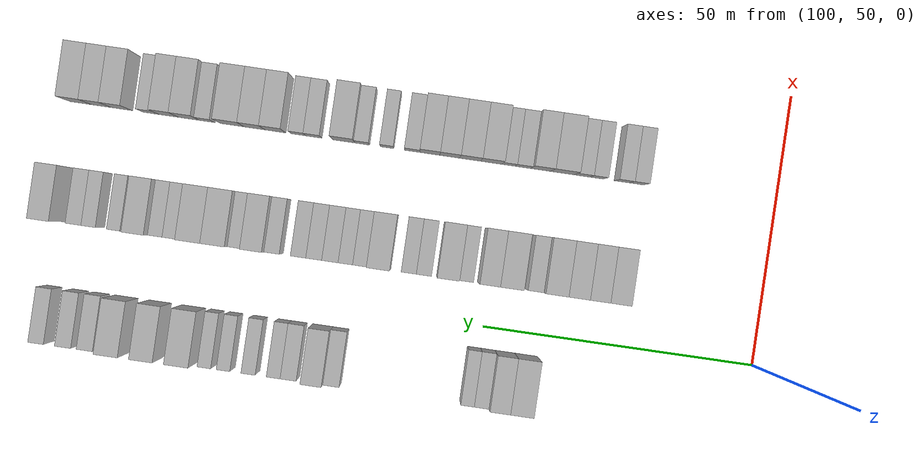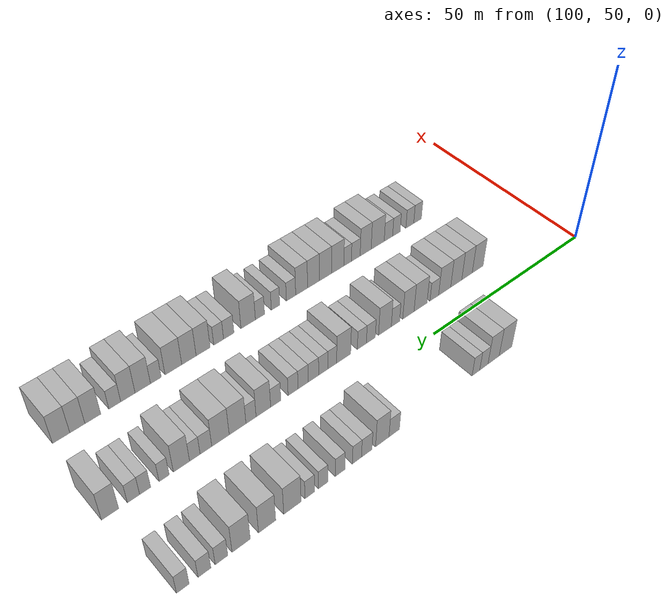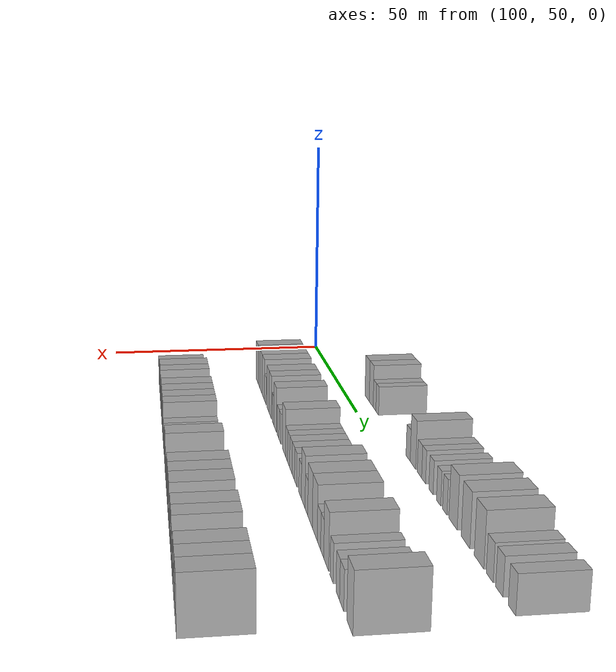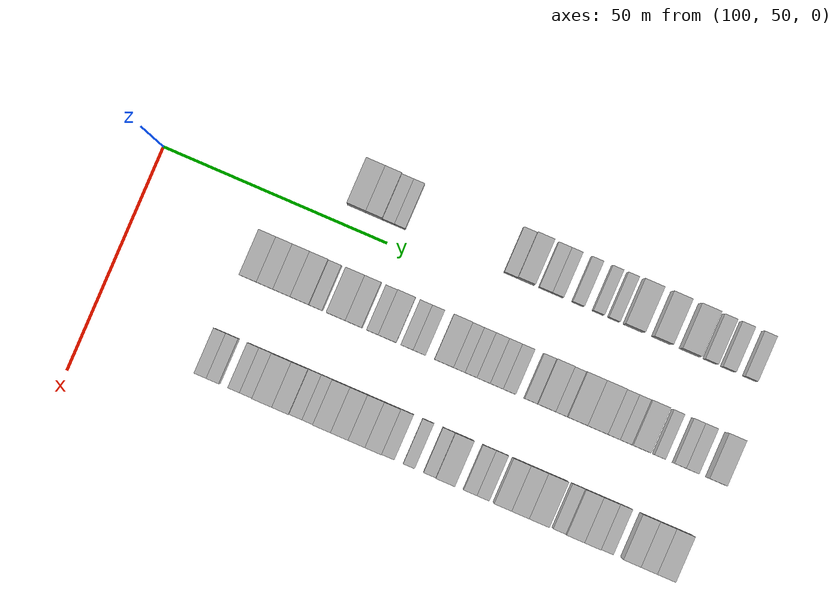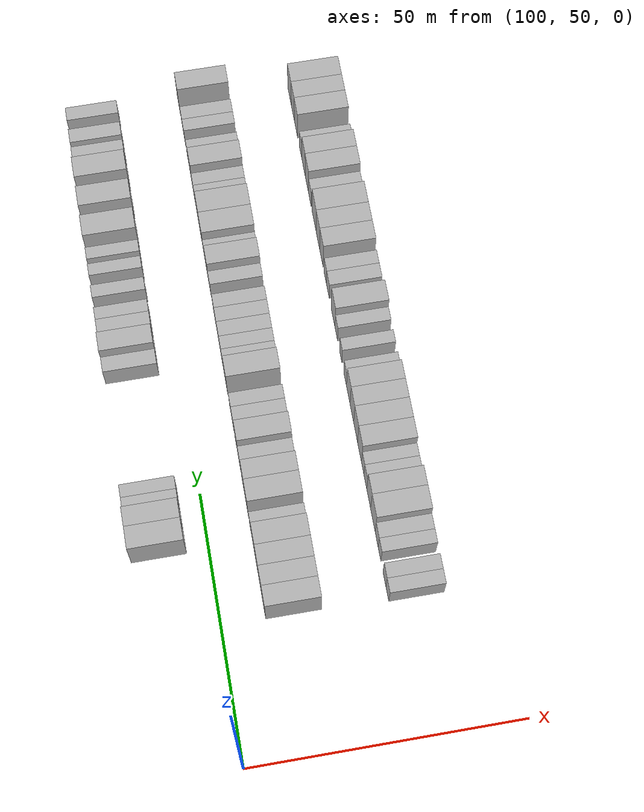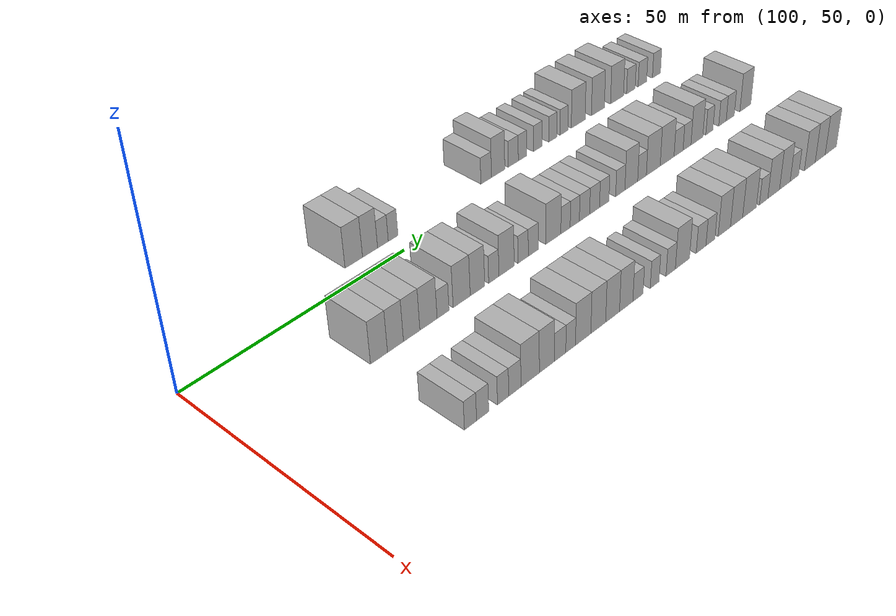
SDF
<sdf version="1.6">
 <world name="default">
  <model name="building_667">
   <static>1</static>
   <pose>91.0000 91.4789 0 0.000000 0.000000 0.000000</pose>
   <link name="link">
    <pose>0 0 4.50 0 0 0</pose>
    <collision name="collision"><geometry><box><size>10.0000 4.1883 9.0000</size></box></geometry></collision>
    <visual name="visual">
     <cast_shadows>0</cast_shadows>
     <geometry><box><size>10.0000 4.1883 9.0000</size></box></geometry>
     <material>
      <script>
       <uri>model://HANNAS_wall/materials/scripts</uri>
       <uri>model://HANNAS_wall/materials/textures</uri>
       <name>vrc/HANNAS_wall</name>
      </script>
     </material>
    </visual>
   </link>
  </model>
  <model name="building_668">
   <static>1</static>
   <pose>91.0000 95.4032 0 0.000000 0.000000 0.000000</pose>
   <link name="link">
    <pose>0 0 4.50 0 0 0</pose>
    <collision name="collision"><geometry><box><size>10.0000 3.6603 9.0000</size></box></geometry></collision>
    <visual name="visual">
     <cast_shadows>0</cast_shadows>
     <geometry><box><size>10.0000 3.6603 9.0000</size></box></geometry>
     <material>
      <script>
       <uri>model://HANNAS_wall/materials/scripts</uri>
       <uri>model://HANNAS_wall/materials/textures</uri>
       <name>vrc/HANNAS_wall</name>
      </script>
     </material>
    </visual>
   </link>
  </model>
  <model name="building_669">
   <static>1</static>
   <pose>91.0000 98.5600 0 0.000000 0.000000 0.000000</pose>
   <link name="link">
    <pose>0 0 3.00 0 0 0</pose>
    <collision name="collision"><geometry><box><size>10.0000 2.6532 6.0000</size></box></geometry></collision>
    <visual name="visual">
     <cast_shadows>0</cast_shadows>
     <geometry><box><size>10.0000 2.6532 6.0000</size></box></geometry>
     <material>
      <script>
       <uri>model://HANNAS_wall/materials/scripts</uri>
       <uri>model://HANNAS_wall/materials/textures</uri>
       <name>vrc/HANNAS_wall</name>
      </script>
     </material>
    </visual>
   </link>
  </model>
  <model name="building_670">
   <static>1</static>
   <pose>91.0000 101.1007 0 0.000000 0.000000 0.000000</pose>
   <link name="link">
    <pose>0 0 3.00 0 0 0</pose>
    <collision name="collision"><geometry><box><size>10.0000 2.4282 6.0000</size></box></geometry></collision>
    <visual name="visual">
     <cast_shadows>0</cast_shadows>
     <geometry><box><size>10.0000 2.4282 6.0000</size></box></geometry>
     <material>
      <script>
       <uri>model://HANNAS_wall/materials/scripts</uri>
       <uri>model://HANNAS_wall/materials/textures</uri>
       <name>vrc/HANNAS_wall</name>
      </script>
     </material>
    </visual>
   </link>
  </model>
  <model name="building_671">
   <static>1</static>
   <pose>91.0000 125.7644 0 0.000000 0.000000 0.000000</pose>
   <link name="link">
    <pose>0 0 3.00 0 0 0</pose>
    <collision name="collision"><geometry><box><size>10.0000 2.9665 6.0000</size></box></geometry></collision>
    <visual name="visual">
     <cast_shadows>0</cast_shadows>
     <geometry><box><size>10.0000 2.9665 6.0000</size></box></geometry>
     <material>
      <script>
       <uri>model://HANNAS_wall/materials/scripts</uri>
       <uri>model://HANNAS_wall/materials/textures</uri>
       <name>vrc/HANNAS_wall</name>
      </script>
     </material>
    </visual>
   </link>
  </model>
  <model name="building_672">
   <static>1</static>
   <pose>91.0000 129.1376 0 0.000000 0.000000 0.000000</pose>
   <link name="link">
    <pose>0 0 4.50 0 0 0</pose>
    <collision name="collision"><geometry><box><size>10.0000 3.7799 9.0000</size></box></geometry></collision>
    <visual name="visual">
     <cast_shadows>0</cast_shadows>
     <geometry><box><size>10.0000 3.7799 9.0000</size></box></geometry>
     <material>
      <script>
       <uri>model://HANNAS_wall/materials/scripts</uri>
       <uri>model://HANNAS_wall/materials/textures</uri>
       <name>vrc/HANNAS_wall</name>
      </script>
     </material>
    </visual>
   </link>
  </model>
  <model name="building_673">
   <static>1</static>
   <pose>91.0000 133.4823 0 0.000000 0.000000 0.000000</pose>
   <link name="link">
    <pose>0 0 3.00 0 0 0</pose>
    <collision name="collision"><geometry><box><size>10.0000 2.9095 6.0000</size></box></geometry></collision>
    <visual name="visual">
     <cast_shadows>0</cast_shadows>
     <geometry><box><size>10.0000 2.9095 6.0000</size></box></geometry>
     <material>
      <script>
       <uri>model://HANNAS_wall/materials/scripts</uri>
       <uri>model://HANNAS_wall/materials/textures</uri>
       <name>vrc/HANNAS_wall</name>
      </script>
     </material>
    </visual>
   </link>
  </model>
  <model name="building_674">
   <static>1</static>
   <pose>91.0000 136.1793 0 0.000000 0.000000 0.000000</pose>
   <link name="link">
    <pose>0 0 3.00 0 0 0</pose>
    <collision name="collision"><geometry><box><size>10.0000 2.4844 6.0000</size></box></geometry></collision>
    <visual name="visual">
     <cast_shadows>0</cast_shadows>
     <geometry><box><size>10.0000 2.4844 6.0000</size></box></geometry>
     <material>
      <script>
       <uri>model://HANNAS_wall/materials/scripts</uri>
       <uri>model://HANNAS_wall/materials/textures</uri>
       <name>vrc/HANNAS_wall</name>
      </script>
     </material>
    </visual>
   </link>
  </model>
  <model name="building_675">
   <static>1</static>
   <pose>91.0000 140.7113 0 0.000000 0.000000 0.000000</pose>
   <link name="link">
    <pose>0 0 3.00 0 0 0</pose>
    <collision name="collision"><geometry><box><size>10.0000 2.5796 6.0000</size></box></geometry></collision>
    <visual name="visual">
     <cast_shadows>0</cast_shadows>
     <geometry><box><size>10.0000 2.5796 6.0000</size></box></geometry>
     <material>
      <script>
       <uri>model://HANNAS_wall/materials/scripts</uri>
       <uri>model://HANNAS_wall/materials/textures</uri>
       <name>vrc/HANNAS_wall</name>
      </script>
     </material>
    </visual>
   </link>
  </model>
  <model name="building_676">
   <static>1</static>
   <pose>91.0000 145.2244 0 0.000000 0.000000 0.000000</pose>
   <link name="link">
    <pose>0 0 3.00 0 0 0</pose>
    <collision name="collision"><geometry><box><size>10.0000 2.4467 6.0000</size></box></geometry></collision>
    <visual name="visual">
     <cast_shadows>0</cast_shadows>
     <geometry><box><size>10.0000 2.4467 6.0000</size></box></geometry>
     <material>
      <script>
       <uri>model://HANNAS_wall/materials/scripts</uri>
       <uri>model://HANNAS_wall/materials/textures</uri>
       <name>vrc/HANNAS_wall</name>
      </script>
     </material>
    </visual>
   </link>
  </model>
  <model name="building_677">
   <static>1</static>
   <pose>91.0000 148.6814 0 0.000000 0.000000 0.000000</pose>
   <link name="link">
    <pose>0 0 3.00 0 0 0</pose>
    <collision name="collision"><geometry><box><size>10.0000 2.4671 6.0000</size></box></geometry></collision>
    <visual name="visual">
     <cast_shadows>0</cast_shadows>
     <geometry><box><size>10.0000 2.4671 6.0000</size></box></geometry>
     <material>
      <script>
       <uri>model://HANNAS_wall/materials/scripts</uri>
       <uri>model://HANNAS_wall/materials/textures</uri>
       <name>vrc/HANNAS_wall</name>
      </script>
     </material>
    </visual>
   </link>
  </model>
  <model name="building_678">
   <static>1</static>
   <pose>91.0000 153.0961 0 0.000000 0.000000 0.000000</pose>
   <link name="link">
    <pose>0 0 4.50 0 0 0</pose>
    <collision name="collision"><geometry><box><size>10.0000 4.3623 9.0000</size></box></geometry></collision>
    <visual name="visual">
     <cast_shadows>0</cast_shadows>
     <geometry><box><size>10.0000 4.3623 9.0000</size></box></geometry>
     <material>
      <script>
       <uri>model://HANNAS_wall/materials/scripts</uri>
       <uri>model://HANNAS_wall/materials/textures</uri>
       <name>vrc/HANNAS_wall</name>
      </script>
     </material>
    </visual>
   </link>
  </model>
  <model name="building_679">
   <static>1</static>
   <pose>91.0000 159.3726 0 0.000000 0.000000 0.000000</pose>
   <link name="link">
    <pose>0 0 4.50 0 0 0</pose>
    <collision name="collision"><geometry><box><size>10.0000 4.1907 9.0000</size></box></geometry></collision>
    <visual name="visual">
     <cast_shadows>0</cast_shadows>
     <geometry><box><size>10.0000 4.1907 9.0000</size></box></geometry>
     <material>
      <script>
       <uri>model://HANNAS_wall/materials/scripts</uri>
       <uri>model://HANNAS_wall/materials/textures</uri>
       <name>vrc/HANNAS_wall</name>
      </script>
     </material>
    </visual>
   </link>
  </model>
  <model name="building_680">
   <static>1</static>
   <pose>91.0000 165.6266 0 0.000000 0.000000 0.000000</pose>
   <link name="link">
    <pose>0 0 4.50 0 0 0</pose>
    <collision name="collision"><geometry><box><size>10.0000 4.3174 9.0000</size></box></geometry></collision>
    <visual name="visual">
     <cast_shadows>0</cast_shadows>
     <geometry><box><size>10.0000 4.3174 9.0000</size></box></geometry>
     <material>
      <script>
       <uri>model://HANNAS_wall/materials/scripts</uri>
       <uri>model://HANNAS_wall/materials/textures</uri>
       <name>vrc/HANNAS_wall</name>
      </script>
     </material>
    </visual>
   </link>
  </model>
  <model name="building_681">
   <static>1</static>
   <pose>91.0000 170.2442 0 0.000000 0.000000 0.000000</pose>
   <link name="link">
    <pose>0 0 3.00 0 0 0</pose>
    <collision name="collision"><geometry><box><size>10.0000 2.9179 6.0000</size></box></geometry></collision>
    <visual name="visual">
     <cast_shadows>0</cast_shadows>
     <geometry><box><size>10.0000 2.9179 6.0000</size></box></geometry>
     <material>
      <script>
       <uri>model://HANNAS_wall/materials/scripts</uri>
       <uri>model://HANNAS_wall/materials/textures</uri>
       <name>vrc/HANNAS_wall</name>
      </script>
     </material>
    </visual>
   </link>
  </model>
  <model name="building_682">
   <static>1</static>
   <pose>91.0000 174.1643 0 0.000000 0.000000 0.000000</pose>
   <link name="link">
    <pose>0 0 3.00 0 0 0</pose>
    <collision name="collision"><geometry><box><size>10.0000 2.9223 6.0000</size></box></geometry></collision>
    <visual name="visual">
     <cast_shadows>0</cast_shadows>
     <geometry><box><size>10.0000 2.9223 6.0000</size></box></geometry>
     <material>
      <script>
       <uri>model://HANNAS_wall/materials/scripts</uri>
       <uri>model://HANNAS_wall/materials/textures</uri>
       <name>vrc/HANNAS_wall</name>
      </script>
     </material>
    </visual>
   </link>
  </model>
  <model name="building_683">
   <static>1</static>
   <pose>91.0000 179.0335 0 0.000000 0.000000 0.000000</pose>
   <link name="link">
    <pose>0 0 3.00 0 0 0</pose>
    <collision name="collision"><geometry><box><size>10.0000 2.8161 6.0000</size></box></geometry></collision>
    <visual name="visual">
     <cast_shadows>0</cast_shadows>
     <geometry><box><size>10.0000 2.8161 6.0000</size></box></geometry>
     <material>
      <script>
       <uri>model://HANNAS_wall/materials/scripts</uri>
       <uri>model://HANNAS_wall/materials/textures</uri>
       <name>vrc/HANNAS_wall</name>
      </script>
     </material>
    </visual>
   </link>
  </model>
  <model name="building_854">
   <static>1</static>
   <pose>113.0000 77.0776 0 0.000000 0.000000 0.000000</pose>
   <link name="link">
    <pose>0 0 4.50 0 0 0</pose>
    <collision name="collision"><geometry><box><size>10.0000 3.8097 9.0000</size></box></geometry></collision>
    <visual name="visual">
     <cast_shadows>0</cast_shadows>
     <geometry><box><size>10.0000 3.8097 9.0000</size></box></geometry>
     <material>
      <script>
       <uri>model://HANNAS_wall/materials/scripts</uri>
       <uri>model://HANNAS_wall/materials/textures</uri>
       <name>vrc/HANNAS_wall</name>
      </script>
     </material>
    </visual>
   </link>
  </model>
  <model name="building_855">
   <static>1</static>
   <pose>113.0000 80.7971 0 0.000000 0.000000 0.000000</pose>
   <link name="link">
    <pose>0 0 4.50 0 0 0</pose>
    <collision name="collision"><geometry><box><size>10.0000 3.6294 9.0000</size></box></geometry></collision>
    <visual name="visual">
     <cast_shadows>0</cast_shadows>
     <geometry><box><size>10.0000 3.6294 9.0000</size></box></geometry>
     <material>
      <script>
       <uri>model://HANNAS_wall/materials/scripts</uri>
       <uri>model://HANNAS_wall/materials/textures</uri>
       <name>vrc/HANNAS_wall</name>
      </script>
     </material>
    </visual>
   </link>
  </model>
  <model name="building_856">
   <static>1</static>
   <pose>113.0000 84.5155 0 0.000000 0.000000 0.000000</pose>
   <link name="link">
    <pose>0 0 4.50 0 0 0</pose>
    <collision name="collision"><geometry><box><size>10.0000 3.8074 9.0000</size></box></geometry></collision>
    <visual name="visual">
     <cast_shadows>0</cast_shadows>
     <geometry><box><size>10.0000 3.8074 9.0000</size></box></geometry>
     <material>
      <script>
       <uri>model://HANNAS_wall/materials/scripts</uri>
       <uri>model://HANNAS_wall/materials/textures</uri>
       <name>vrc/HANNAS_wall</name>
      </script>
     </material>
    </visual>
   </link>
  </model>
  <model name="building_857">
   <static>1</static>
   <pose>113.0000 88.4548 0 0.000000 0.000000 0.000000</pose>
   <link name="link">
    <pose>0 0 4.50 0 0 0</pose>
    <collision name="collision"><geometry><box><size>10.0000 4.0712 9.0000</size></box></geometry></collision>
    <visual name="visual">
     <cast_shadows>0</cast_shadows>
     <geometry><box><size>10.0000 4.0712 9.0000</size></box></geometry>
     <material>
      <script>
       <uri>model://HANNAS_wall/materials/scripts</uri>
       <uri>model://HANNAS_wall/materials/textures</uri>
       <name>vrc/HANNAS_wall</name>
      </script>
     </material>
    </visual>
   </link>
  </model>
  <model name="building_858">
   <static>1</static>
   <pose>113.0000 91.9271 0 0.000000 0.000000 0.000000</pose>
   <link name="link">
    <pose>0 0 3.00 0 0 0</pose>
    <collision name="collision"><geometry><box><size>10.0000 2.8732 6.0000</size></box></geometry></collision>
    <visual name="visual">
     <cast_shadows>0</cast_shadows>
     <geometry><box><size>10.0000 2.8732 6.0000</size></box></geometry>
     <material>
      <script>
       <uri>model://HANNAS_wall/materials/scripts</uri>
       <uri>model://HANNAS_wall/materials/textures</uri>
       <name>vrc/HANNAS_wall</name>
      </script>
     </material>
    </visual>
   </link>
  </model>
  <model name="building_859">
   <static>1</static>
   <pose>113.0000 96.4698 0 0.000000 0.000000 0.000000</pose>
   <link name="link">
    <pose>0 0 4.50 0 0 0</pose>
    <collision name="collision"><geometry><box><size>10.0000 4.2123 9.0000</size></box></geometry></collision>
    <visual name="visual">
     <cast_shadows>0</cast_shadows>
     <geometry><box><size>10.0000 4.2123 9.0000</size></box></geometry>
     <material>
      <script>
       <uri>model://HANNAS_wall/materials/scripts</uri>
       <uri>model://HANNAS_wall/materials/textures</uri>
       <name>vrc/HANNAS_wall</name>
      </script>
     </material>
    </visual>
   </link>
  </model>
  <model name="building_860">
   <static>1</static>
   <pose>113.0000 100.3964 0 0.000000 0.000000 0.000000</pose>
   <link name="link">
    <pose>0 0 4.50 0 0 0</pose>
    <collision name="collision"><geometry><box><size>10.0000 3.6409 9.0000</size></box></geometry></collision>
    <visual name="visual">
     <cast_shadows>0</cast_shadows>
     <geometry><box><size>10.0000 3.6409 9.0000</size></box></geometry>
     <material>
      <script>
       <uri>model://HANNAS_wall/materials/scripts</uri>
       <uri>model://HANNAS_wall/materials/textures</uri>
       <name>vrc/HANNAS_wall</name>
      </script>
     </material>
    </visual>
   </link>
  </model>
  <model name="building_861">
   <static>1</static>
   <pose>113.0000 104.5297 0 0.000000 0.000000 0.000000</pose>
   <link name="link">
    <pose>0 0 3.00 0 0 0</pose>
    <collision name="collision"><geometry><box><size>10.0000 2.6257 6.0000</size></box></geometry></collision>
    <visual name="visual">
     <cast_shadows>0</cast_shadows>
     <geometry><box><size>10.0000 2.6257 6.0000</size></box></geometry>
     <material>
      <script>
       <uri>model://HANNAS_wall/materials/scripts</uri>
       <uri>model://HANNAS_wall/materials/textures</uri>
       <name>vrc/HANNAS_wall</name>
      </script>
     </material>
    </visual>
   </link>
  </model>
  <model name="building_862">
   <static>1</static>
   <pose>113.0000 107.8255 0 0.000000 0.000000 0.000000</pose>
   <link name="link">
    <pose>0 0 4.50 0 0 0</pose>
    <collision name="collision"><geometry><box><size>10.0000 3.9659 9.0000</size></box></geometry></collision>
    <visual name="visual">
     <cast_shadows>0</cast_shadows>
     <geometry><box><size>10.0000 3.9659 9.0000</size></box></geometry>
     <material>
      <script>
       <uri>model://HANNAS_wall/materials/scripts</uri>
       <uri>model://HANNAS_wall/materials/textures</uri>
       <name>vrc/HANNAS_wall</name>
      </script>
     </material>
    </visual>
   </link>
  </model>
  <model name="building_863">
   <static>1</static>
   <pose>113.0000 112.1782 0 0.000000 0.000000 0.000000</pose>
   <link name="link">
    <pose>0 0 3.00 0 0 0</pose>
    <collision name="collision"><geometry><box><size>10.0000 2.7395 6.0000</size></box></geometry></collision>
    <visual name="visual">
     <cast_shadows>0</cast_shadows>
     <geometry><box><size>10.0000 2.7395 6.0000</size></box></geometry>
     <material>
      <script>
       <uri>model://HANNAS_wall/materials/scripts</uri>
       <uri>model://HANNAS_wall/materials/textures</uri>
       <name>vrc/HANNAS_wall</name>
      </script>
     </material>
    </visual>
   </link>
  </model>
  <model name="building_864">
   <static>1</static>
   <pose>113.0000 114.9187 0 0.000000 0.000000 0.000000</pose>
   <link name="link">
    <pose>0 0 3.00 0 0 0</pose>
    <collision name="collision"><geometry><box><size>10.0000 2.7417 6.0000</size></box></geometry></collision>
    <visual name="visual">
     <cast_shadows>0</cast_shadows>
     <geometry><box><size>10.0000 2.7417 6.0000</size></box></geometry>
     <material>
      <script>
       <uri>model://HANNAS_wall/materials/scripts</uri>
       <uri>model://HANNAS_wall/materials/textures</uri>
       <name>vrc/HANNAS_wall</name>
      </script>
     </material>
    </visual>
   </link>
  </model>
  <model name="building_865">
   <static>1</static>
   <pose>113.0000 120.3689 0 0.000000 0.000000 0.000000</pose>
   <link name="link">
    <pose>0 0 4.50 0 0 0</pose>
    <collision name="collision"><geometry><box><size>10.0000 4.1587 9.0000</size></box></geometry></collision>
    <visual name="visual">
     <cast_shadows>0</cast_shadows>
     <geometry><box><size>10.0000 4.1587 9.0000</size></box></geometry>
     <material>
      <script>
       <uri>model://HANNAS_wall/materials/scripts</uri>
       <uri>model://HANNAS_wall/materials/textures</uri>
       <name>vrc/HANNAS_wall</name>
      </script>
     </material>
    </visual>
   </link>
  </model>
  <model name="building_866">
   <static>1</static>
   <pose>113.0000 123.7522 0 0.000000 0.000000 0.000000</pose>
   <link name="link">
    <pose>0 0 3.00 0 0 0</pose>
    <collision name="collision"><geometry><box><size>10.0000 2.6078 6.0000</size></box></geometry></collision>
    <visual name="visual">
     <cast_shadows>0</cast_shadows>
     <geometry><box><size>10.0000 2.6078 6.0000</size></box></geometry>
     <material>
      <script>
       <uri>model://HANNAS_wall/materials/scripts</uri>
       <uri>model://HANNAS_wall/materials/textures</uri>
       <name>vrc/HANNAS_wall</name>
      </script>
     </material>
    </visual>
   </link>
  </model>
  <model name="building_867">
   <static>1</static>
   <pose>113.0000 126.3635 0 0.000000 0.000000 0.000000</pose>
   <link name="link">
    <pose>0 0 3.00 0 0 0</pose>
    <collision name="collision"><geometry><box><size>10.0000 2.6148 6.0000</size></box></geometry></collision>
    <visual name="visual">
     <cast_shadows>0</cast_shadows>
     <geometry><box><size>10.0000 2.6148 6.0000</size></box></geometry>
     <material>
      <script>
       <uri>model://HANNAS_wall/materials/scripts</uri>
       <uri>model://HANNAS_wall/materials/textures</uri>
       <name>vrc/HANNAS_wall</name>
      </script>
     </material>
    </visual>
   </link>
  </model>
  <model name="building_868">
   <static>1</static>
   <pose>113.0000 129.1506 0 0.000000 0.000000 0.000000</pose>
   <link name="link">
    <pose>0 0 3.00 0 0 0</pose>
    <collision name="collision"><geometry><box><size>10.0000 2.9593 6.0000</size></box></geometry></collision>
    <visual name="visual">
     <cast_shadows>0</cast_shadows>
     <geometry><box><size>10.0000 2.9593 6.0000</size></box></geometry>
     <material>
      <script>
       <uri>model://HANNAS_wall/materials/scripts</uri>
       <uri>model://HANNAS_wall/materials/textures</uri>
       <name>vrc/HANNAS_wall</name>
      </script>
     </material>
    </visual>
   </link>
  </model>
  <model name="building_869">
   <static>1</static>
   <pose>113.0000 132.0668 0 0.000000 0.000000 0.000000</pose>
   <link name="link">
    <pose>0 0 3.00 0 0 0</pose>
    <collision name="collision"><geometry><box><size>10.0000 2.8731 6.0000</size></box></geometry></collision>
    <visual name="visual">
     <cast_shadows>0</cast_shadows>
     <geometry><box><size>10.0000 2.8731 6.0000</size></box></geometry>
     <material>
      <script>
       <uri>model://HANNAS_wall/materials/scripts</uri>
       <uri>model://HANNAS_wall/materials/textures</uri>
       <name>vrc/HANNAS_wall</name>
      </script>
     </material>
    </visual>
   </link>
  </model>
  <model name="building_870">
   <static>1</static>
   <pose>113.0000 134.8924 0 0.000000 0.000000 0.000000</pose>
   <link name="link">
    <pose>0 0 3.00 0 0 0</pose>
    <collision name="collision"><geometry><box><size>10.0000 2.7780 6.0000</size></box></geometry></collision>
    <visual name="visual">
     <cast_shadows>0</cast_shadows>
     <geometry><box><size>10.0000 2.7780 6.0000</size></box></geometry>
     <material>
      <script>
       <uri>model://HANNAS_wall/materials/scripts</uri>
       <uri>model://HANNAS_wall/materials/textures</uri>
       <name>vrc/HANNAS_wall</name>
      </script>
     </material>
    </visual>
   </link>
  </model>
  <model name="building_871">
   <static>1</static>
   <pose>113.0000 139.6704 0 0.000000 0.000000 0.000000</pose>
   <link name="link">
    <pose>0 0 3.00 0 0 0</pose>
    <collision name="collision"><geometry><box><size>10.0000 2.7781 6.0000</size></box></geometry></collision>
    <visual name="visual">
     <cast_shadows>0</cast_shadows>
     <geometry><box><size>10.0000 2.7781 6.0000</size></box></geometry>
     <material>
      <script>
       <uri>model://HANNAS_wall/materials/scripts</uri>
       <uri>model://HANNAS_wall/materials/textures</uri>
       <name>vrc/HANNAS_wall</name>
      </script>
     </material>
    </visual>
   </link>
  </model>
  <model name="building_872">
   <static>1</static>
   <pose>113.0000 143.0177 0 0.000000 0.000000 0.000000</pose>
   <link name="link">
    <pose>0 0 4.50 0 0 0</pose>
    <collision name="collision"><geometry><box><size>10.0000 3.9165 9.0000</size></box></geometry></collision>
    <visual name="visual">
     <cast_shadows>0</cast_shadows>
     <geometry><box><size>10.0000 3.9165 9.0000</size></box></geometry>
     <material>
      <script>
       <uri>model://HANNAS_wall/materials/scripts</uri>
       <uri>model://HANNAS_wall/materials/textures</uri>
       <name>vrc/HANNAS_wall</name>
      </script>
     </material>
    </visual>
   </link>
  </model>
  <model name="building_873">
   <static>1</static>
   <pose>113.0000 146.3214 0 0.000000 0.000000 0.000000</pose>
   <link name="link">
    <pose>0 0 3.00 0 0 0</pose>
    <collision name="collision"><geometry><box><size>10.0000 2.6908 6.0000</size></box></geometry></collision>
    <visual name="visual">
     <cast_shadows>0</cast_shadows>
     <geometry><box><size>10.0000 2.6908 6.0000</size></box></geometry>
     <material>
      <script>
       <uri>model://HANNAS_wall/materials/scripts</uri>
       <uri>model://HANNAS_wall/materials/textures</uri>
       <name>vrc/HANNAS_wall</name>
      </script>
     </material>
    </visual>
   </link>
  </model>
  <model name="building_874">
   <static>1</static>
   <pose>113.0000 149.8511 0 0.000000 0.000000 0.000000</pose>
   <link name="link">
    <pose>0 0 4.50 0 0 0</pose>
    <collision name="collision"><geometry><box><size>10.0000 4.3688 9.0000</size></box></geometry></collision>
    <visual name="visual">
     <cast_shadows>0</cast_shadows>
     <geometry><box><size>10.0000 4.3688 9.0000</size></box></geometry>
     <material>
      <script>
       <uri>model://HANNAS_wall/materials/scripts</uri>
       <uri>model://HANNAS_wall/materials/textures</uri>
       <name>vrc/HANNAS_wall</name>
      </script>
     </material>
    </visual>
   </link>
  </model>
  <model name="building_875">
   <static>1</static>
   <pose>113.0000 154.2616 0 0.000000 0.000000 0.000000</pose>
   <link name="link">
    <pose>0 0 4.50 0 0 0</pose>
    <collision name="collision"><geometry><box><size>10.0000 4.4522 9.0000</size></box></geometry></collision>
    <visual name="visual">
     <cast_shadows>0</cast_shadows>
     <geometry><box><size>10.0000 4.4522 9.0000</size></box></geometry>
     <material>
      <script>
       <uri>model://HANNAS_wall/materials/scripts</uri>
       <uri>model://HANNAS_wall/materials/textures</uri>
       <name>vrc/HANNAS_wall</name>
      </script>
     </material>
    </visual>
   </link>
  </model>
  <model name="building_876">
   <static>1</static>
   <pose>113.0000 157.9608 0 0.000000 0.000000 0.000000</pose>
   <link name="link">
    <pose>0 0 3.00 0 0 0</pose>
    <collision name="collision"><geometry><box><size>10.0000 2.9462 6.0000</size></box></geometry></collision>
    <visual name="visual">
     <cast_shadows>0</cast_shadows>
     <geometry><box><size>10.0000 2.9462 6.0000</size></box></geometry>
     <material>
      <script>
       <uri>model://HANNAS_wall/materials/scripts</uri>
       <uri>model://HANNAS_wall/materials/textures</uri>
       <name>vrc/HANNAS_wall</name>
      </script>
     </material>
    </visual>
   </link>
  </model>
  <model name="building_877">
   <static>1</static>
   <pose>113.0000 160.7417 0 0.000000 0.000000 0.000000</pose>
   <link name="link">
    <pose>0 0 3.00 0 0 0</pose>
    <collision name="collision"><geometry><box><size>10.0000 2.6155 6.0000</size></box></geometry></collision>
    <visual name="visual">
     <cast_shadows>0</cast_shadows>
     <geometry><box><size>10.0000 2.6155 6.0000</size></box></geometry>
     <material>
      <script>
       <uri>model://HANNAS_wall/materials/scripts</uri>
       <uri>model://HANNAS_wall/materials/textures</uri>
       <name>vrc/HANNAS_wall</name>
      </script>
     </material>
    </visual>
   </link>
  </model>
  <model name="building_878">
   <static>1</static>
   <pose>113.0000 164.0387 0 0.000000 0.000000 0.000000</pose>
   <link name="link">
    <pose>0 0 4.50 0 0 0</pose>
    <collision name="collision"><geometry><box><size>10.0000 3.9785 9.0000</size></box></geometry></collision>
    <visual name="visual">
     <cast_shadows>0</cast_shadows>
     <geometry><box><size>10.0000 3.9785 9.0000</size></box></geometry>
     <material>
      <script>
       <uri>model://HANNAS_wall/materials/scripts</uri>
       <uri>model://HANNAS_wall/materials/textures</uri>
       <name>vrc/HANNAS_wall</name>
      </script>
     </material>
    </visual>
   </link>
  </model>
  <model name="building_879">
   <static>1</static>
   <pose>113.0000 168.2429 0 0.000000 0.000000 0.000000</pose>
   <link name="link">
    <pose>0 0 3.00 0 0 0</pose>
    <collision name="collision"><geometry><box><size>10.0000 2.4299 6.0000</size></box></geometry></collision>
    <visual name="visual">
     <cast_shadows>0</cast_shadows>
     <geometry><box><size>10.0000 2.4299 6.0000</size></box></geometry>
     <material>
      <script>
       <uri>model://HANNAS_wall/materials/scripts</uri>
       <uri>model://HANNAS_wall/materials/textures</uri>
       <name>vrc/HANNAS_wall</name>
      </script>
     </material>
    </visual>
   </link>
  </model>
  <model name="building_880">
   <static>1</static>
   <pose>113.0000 172.7592 0 0.000000 0.000000 0.000000</pose>
   <link name="link">
    <pose>0 0 3.00 0 0 0</pose>
    <collision name="collision"><geometry><box><size>10.0000 2.6026 6.0000</size></box></geometry></collision>
    <visual name="visual">
     <cast_shadows>0</cast_shadows>
     <geometry><box><size>10.0000 2.6026 6.0000</size></box></geometry>
     <material>
      <script>
       <uri>model://HANNAS_wall/materials/scripts</uri>
       <uri>model://HANNAS_wall/materials/textures</uri>
       <name>vrc/HANNAS_wall</name>
      </script>
     </material>
    </visual>
   </link>
  </model>
  <model name="building_881">
   <static>1</static>
   <pose>113.0000 175.4812 0 0.000000 0.000000 0.000000</pose>
   <link name="link">
    <pose>0 0 3.00 0 0 0</pose>
    <collision name="collision"><geometry><box><size>10.0000 2.8413 6.0000</size></box></geometry></collision>
    <visual name="visual">
     <cast_shadows>0</cast_shadows>
     <geometry><box><size>10.0000 2.8413 6.0000</size></box></geometry>
     <material>
      <script>
       <uri>model://HANNAS_wall/materials/scripts</uri>
       <uri>model://HANNAS_wall/materials/textures</uri>
       <name>vrc/HANNAS_wall</name>
      </script>
     </material>
    </visual>
   </link>
  </model>
  <model name="building_882">
   <static>1</static>
   <pose>113.0000 180.8557 0 0.000000 0.000000 0.000000</pose>
   <link name="link">
    <pose>0 0 4.50 0 0 0</pose>
    <collision name="collision"><geometry><box><size>10.0000 3.9076 9.0000</size></box></geometry></collision>
    <visual name="visual">
     <cast_shadows>0</cast_shadows>
     <geometry><box><size>10.0000 3.9076 9.0000</size></box></geometry>
     <material>
      <script>
       <uri>model://HANNAS_wall/materials/scripts</uri>
       <uri>model://HANNAS_wall/materials/textures</uri>
       <name>vrc/HANNAS_wall</name>
      </script>
     </material>
    </visual>
   </link>
  </model>
  <model name="building_1041">
   <static>1</static>
   <pose>135.0000 75.8888 0 0.000000 0.000000 0.000000</pose>
   <link name="link">
    <pose>0 0 3.00 0 0 0</pose>
    <collision name="collision"><geometry><box><size>10.0000 2.7084 6.0000</size></box></geometry></collision>
    <visual name="visual">
     <cast_shadows>0</cast_shadows>
     <geometry><box><size>10.0000 2.7084 6.0000</size></box></geometry>
     <material>
      <script>
       <uri>model://HANNAS_wall/materials/scripts</uri>
       <uri>model://HANNAS_wall/materials/textures</uri>
       <name>vrc/HANNAS_wall</name>
      </script>
     </material>
    </visual>
   </link>
  </model>
  <model name="building_1042">
   <static>1</static>
   <pose>135.0000 78.6228 0 0.000000 0.000000 0.000000</pose>
   <link name="link">
    <pose>0 0 3.00 0 0 0</pose>
    <collision name="collision"><geometry><box><size>10.0000 2.7595 6.0000</size></box></geometry></collision>
    <visual name="visual">
     <cast_shadows>0</cast_shadows>
     <geometry><box><size>10.0000 2.7595 6.0000</size></box></geometry>
     <material>
      <script>
       <uri>model://HANNAS_wall/materials/scripts</uri>
       <uri>model://HANNAS_wall/materials/textures</uri>
       <name>vrc/HANNAS_wall</name>
      </script>
     </material>
    </visual>
   </link>
  </model>
  <model name="building_1043">
   <static>1</static>
   <pose>135.0000 83.3085 0 0.000000 0.000000 0.000000</pose>
   <link name="link">
    <pose>0 0 3.00 0 0 0</pose>
    <collision name="collision"><geometry><box><size>10.0000 2.6119 6.0000</size></box></geometry></collision>
    <visual name="visual">
     <cast_shadows>0</cast_shadows>
     <geometry><box><size>10.0000 2.6119 6.0000</size></box></geometry>
     <material>
      <script>
       <uri>model://HANNAS_wall/materials/scripts</uri>
       <uri>model://HANNAS_wall/materials/textures</uri>
       <name>vrc/HANNAS_wall</name>
      </script>
     </material>
    </visual>
   </link>
  </model>
  <model name="building_1044">
   <static>1</static>
   <pose>135.0000 86.0564 0 0.000000 0.000000 0.000000</pose>
   <link name="link">
    <pose>0 0 3.00 0 0 0</pose>
    <collision name="collision"><geometry><box><size>10.0000 2.8839 6.0000</size></box></geometry></collision>
    <visual name="visual">
     <cast_shadows>0</cast_shadows>
     <geometry><box><size>10.0000 2.8839 6.0000</size></box></geometry>
     <material>
      <script>
       <uri>model://HANNAS_wall/materials/scripts</uri>
       <uri>model://HANNAS_wall/materials/textures</uri>
       <name>vrc/HANNAS_wall</name>
      </script>
     </material>
    </visual>
   </link>
  </model>
  <model name="building_1045">
   <static>1</static>
   <pose>135.0000 89.7010 0 0.000000 0.000000 0.000000</pose>
   <link name="link">
    <pose>0 0 4.50 0 0 0</pose>
    <collision name="collision"><geometry><box><size>10.0000 4.4052 9.0000</size></box></geometry></collision>
    <visual name="visual">
     <cast_shadows>0</cast_shadows>
     <geometry><box><size>10.0000 4.4052 9.0000</size></box></geometry>
     <material>
      <script>
       <uri>model://HANNAS_wall/materials/scripts</uri>
       <uri>model://HANNAS_wall/materials/textures</uri>
       <name>vrc/HANNAS_wall</name>
      </script>
     </material>
    </visual>
   </link>
  </model>
  <model name="building_1046">
   <static>1</static>
   <pose>135.0000 93.7454 0 0.000000 0.000000 0.000000</pose>
   <link name="link">
    <pose>0 0 4.50 0 0 0</pose>
    <collision name="collision"><geometry><box><size>10.0000 3.6837 9.0000</size></box></geometry></collision>
    <visual name="visual">
     <cast_shadows>0</cast_shadows>
     <geometry><box><size>10.0000 3.6837 9.0000</size></box></geometry>
     <material>
      <script>
       <uri>model://HANNAS_wall/materials/scripts</uri>
       <uri>model://HANNAS_wall/materials/textures</uri>
       <name>vrc/HANNAS_wall</name>
      </script>
     </material>
    </visual>
   </link>
  </model>
  <model name="building_1047">
   <static>1</static>
   <pose>135.0000 97.0185 0 0.000000 0.000000 0.000000</pose>
   <link name="link">
    <pose>0 0 3.00 0 0 0</pose>
    <collision name="collision"><geometry><box><size>10.0000 2.8624 6.0000</size></box></geometry></collision>
    <visual name="visual">
     <cast_shadows>0</cast_shadows>
     <geometry><box><size>10.0000 2.8624 6.0000</size></box></geometry>
     <material>
      <script>
       <uri>model://HANNAS_wall/materials/scripts</uri>
       <uri>model://HANNAS_wall/materials/textures</uri>
       <name>vrc/HANNAS_wall</name>
      </script>
     </material>
    </visual>
   </link>
  </model>
  <model name="building_1048">
   <static>1</static>
   <pose>135.0000 99.6762 0 0.000000 0.000000 0.000000</pose>
   <link name="link">
    <pose>0 0 3.00 0 0 0</pose>
    <collision name="collision"><geometry><box><size>10.0000 2.4530 6.0000</size></box></geometry></collision>
    <visual name="visual">
     <cast_shadows>0</cast_shadows>
     <geometry><box><size>10.0000 2.4530 6.0000</size></box></geometry>
     <material>
      <script>
       <uri>model://HANNAS_wall/materials/scripts</uri>
       <uri>model://HANNAS_wall/materials/textures</uri>
       <name>vrc/HANNAS_wall</name>
      </script>
     </material>
    </visual>
   </link>
  </model>
  <model name="building_1049">
   <static>1</static>
   <pose>135.0000 102.8780 0 0.000000 0.000000 0.000000</pose>
   <link name="link">
    <pose>0 0 4.50 0 0 0</pose>
    <collision name="collision"><geometry><box><size>10.0000 3.9507 9.0000</size></box></geometry></collision>
    <visual name="visual">
     <cast_shadows>0</cast_shadows>
     <geometry><box><size>10.0000 3.9507 9.0000</size></box></geometry>
     <material>
      <script>
       <uri>model://HANNAS_wall/materials/scripts</uri>
       <uri>model://HANNAS_wall/materials/textures</uri>
       <name>vrc/HANNAS_wall</name>
      </script>
     </material>
    </visual>
   </link>
  </model>
  <model name="building_1050">
   <static>1</static>
   <pose>135.0000 106.7922 0 0.000000 0.000000 0.000000</pose>
   <link name="link">
    <pose>0 0 4.50 0 0 0</pose>
    <collision name="collision"><geometry><box><size>10.0000 3.8776 9.0000</size></box></geometry></collision>
    <visual name="visual">
     <cast_shadows>0</cast_shadows>
     <geometry><box><size>10.0000 3.8776 9.0000</size></box></geometry>
     <material>
      <script>
       <uri>model://HANNAS_wall/materials/scripts</uri>
       <uri>model://HANNAS_wall/materials/textures</uri>
       <name>vrc/HANNAS_wall</name>
      </script>
     </material>
    </visual>
   </link>
  </model>
  <model name="building_1051">
   <static>1</static>
   <pose>135.0000 110.5779 0 0.000000 0.000000 0.000000</pose>
   <link name="link">
    <pose>0 0 4.50 0 0 0</pose>
    <collision name="collision"><geometry><box><size>10.0000 3.6939 9.0000</size></box></geometry></collision>
    <visual name="visual">
     <cast_shadows>0</cast_shadows>
     <geometry><box><size>10.0000 3.6939 9.0000</size></box></geometry>
     <material>
      <script>
       <uri>model://HANNAS_wall/materials/scripts</uri>
       <uri>model://HANNAS_wall/materials/textures</uri>
       <name>vrc/HANNAS_wall</name>
      </script>
     </material>
    </visual>
   </link>
  </model>
  <model name="building_1052">
   <static>1</static>
   <pose>135.0000 114.2510 0 0.000000 0.000000 0.000000</pose>
   <link name="link">
    <pose>0 0 4.50 0 0 0</pose>
    <collision name="collision"><geometry><box><size>10.0000 3.6522 9.0000</size></box></geometry></collision>
    <visual name="visual">
     <cast_shadows>0</cast_shadows>
     <geometry><box><size>10.0000 3.6522 9.0000</size></box></geometry>
     <material>
      <script>
       <uri>model://HANNAS_wall/materials/scripts</uri>
       <uri>model://HANNAS_wall/materials/textures</uri>
       <name>vrc/HANNAS_wall</name>
      </script>
     </material>
    </visual>
   </link>
  </model>
  <model name="building_1053">
   <static>1</static>
   <pose>135.0000 117.4906 0 0.000000 0.000000 0.000000</pose>
   <link name="link">
    <pose>0 0 3.00 0 0 0</pose>
    <collision name="collision"><geometry><box><size>10.0000 2.8271 6.0000</size></box></geometry></collision>
    <visual name="visual">
     <cast_shadows>0</cast_shadows>
     <geometry><box><size>10.0000 2.8271 6.0000</size></box></geometry>
     <material>
      <script>
       <uri>model://HANNAS_wall/materials/scripts</uri>
       <uri>model://HANNAS_wall/materials/textures</uri>
       <name>vrc/HANNAS_wall</name>
      </script>
     </material>
    </visual>
   </link>
  </model>
  <model name="building_1054">
   <static>1</static>
   <pose>135.0000 122.1537 0 0.000000 0.000000 0.000000</pose>
   <link name="link">
    <pose>0 0 3.00 0 0 0</pose>
    <collision name="collision"><geometry><box><size>10.0000 2.4992 6.0000</size></box></geometry></collision>
    <visual name="visual">
     <cast_shadows>0</cast_shadows>
     <geometry><box><size>10.0000 2.4992 6.0000</size></box></geometry>
     <material>
      <script>
       <uri>model://HANNAS_wall/materials/scripts</uri>
       <uri>model://HANNAS_wall/materials/textures</uri>
       <name>vrc/HANNAS_wall</name>
      </script>
     </material>
    </visual>
   </link>
  </model>
  <model name="building_1055">
   <static>1</static>
   <pose>135.0000 126.7517 0 0.000000 0.000000 0.000000</pose>
   <link name="link">
    <pose>0 0 3.00 0 0 0</pose>
    <collision name="collision"><geometry><box><size>10.0000 2.6967 6.0000</size></box></geometry></collision>
    <visual name="visual">
     <cast_shadows>0</cast_shadows>
     <geometry><box><size>10.0000 2.6967 6.0000</size></box></geometry>
     <material>
      <script>
       <uri>model://HANNAS_wall/materials/scripts</uri>
       <uri>model://HANNAS_wall/materials/textures</uri>
       <name>vrc/HANNAS_wall</name>
      </script>
     </material>
    </visual>
   </link>
  </model>
  <model name="building_1056">
   <static>1</static>
   <pose>135.0000 130.1864 0 0.000000 0.000000 0.000000</pose>
   <link name="link">
    <pose>0 0 4.50 0 0 0</pose>
    <collision name="collision"><geometry><box><size>10.0000 4.1728 9.0000</size></box></geometry></collision>
    <visual name="visual">
     <cast_shadows>0</cast_shadows>
     <geometry><box><size>10.0000 4.1728 9.0000</size></box></geometry>
     <material>
      <script>
       <uri>model://HANNAS_wall/materials/scripts</uri>
       <uri>model://HANNAS_wall/materials/textures</uri>
       <name>vrc/HANNAS_wall</name>
      </script>
     </material>
    </visual>
   </link>
  </model>
  <model name="building_1057">
   <static>1</static>
   <pose>135.0000 135.7404 0 0.000000 0.000000 0.000000</pose>
   <link name="link">
    <pose>0 0 3.00 0 0 0</pose>
    <collision name="collision"><geometry><box><size>10.0000 2.9352 6.0000</size></box></geometry></collision>
    <visual name="visual">
     <cast_shadows>0</cast_shadows>
     <geometry><box><size>10.0000 2.9352 6.0000</size></box></geometry>
     <material>
      <script>
       <uri>model://HANNAS_wall/materials/scripts</uri>
       <uri>model://HANNAS_wall/materials/textures</uri>
       <name>vrc/HANNAS_wall</name>
      </script>
     </material>
    </visual>
   </link>
  </model>
  <model name="building_1058">
   <static>1</static>
   <pose>135.0000 138.5769 0 0.000000 0.000000 0.000000</pose>
   <link name="link">
    <pose>0 0 3.00 0 0 0</pose>
    <collision name="collision"><geometry><box><size>10.0000 2.7378 6.0000</size></box></geometry></collision>
    <visual name="visual">
     <cast_shadows>0</cast_shadows>
     <geometry><box><size>10.0000 2.7378 6.0000</size></box></geometry>
     <material>
      <script>
       <uri>model://HANNAS_wall/materials/scripts</uri>
       <uri>model://HANNAS_wall/materials/textures</uri>
       <name>vrc/HANNAS_wall</name>
      </script>
     </material>
    </visual>
   </link>
  </model>
  <model name="building_1059">
   <static>1</static>
   <pose>135.0000 142.8674 0 0.000000 0.000000 0.000000</pose>
   <link name="link">
    <pose>0 0 4.50 0 0 0</pose>
    <collision name="collision"><geometry><box><size>10.0000 3.8431 9.0000</size></box></geometry></collision>
    <visual name="visual">
     <cast_shadows>0</cast_shadows>
     <geometry><box><size>10.0000 3.8431 9.0000</size></box></geometry>
     <material>
      <script>
       <uri>model://HANNAS_wall/materials/scripts</uri>
       <uri>model://HANNAS_wall/materials/textures</uri>
       <name>vrc/HANNAS_wall</name>
      </script>
     </material>
    </visual>
   </link>
  </model>
  <model name="building_1060">
   <static>1</static>
   <pose>135.0000 146.7263 0 0.000000 0.000000 0.000000</pose>
   <link name="link">
    <pose>0 0 4.50 0 0 0</pose>
    <collision name="collision"><geometry><box><size>10.0000 3.8747 9.0000</size></box></geometry></collision>
    <visual name="visual">
     <cast_shadows>0</cast_shadows>
     <geometry><box><size>10.0000 3.8747 9.0000</size></box></geometry>
     <material>
      <script>
       <uri>model://HANNAS_wall/materials/scripts</uri>
       <uri>model://HANNAS_wall/materials/textures</uri>
       <name>vrc/HANNAS_wall</name>
      </script>
     </material>
    </visual>
   </link>
  </model>
  <model name="building_1061">
   <static>1</static>
   <pose>135.0000 150.8890 0 0.000000 0.000000 0.000000</pose>
   <link name="link">
    <pose>0 0 4.50 0 0 0</pose>
    <collision name="collision"><geometry><box><size>10.0000 4.4505 9.0000</size></box></geometry></collision>
    <visual name="visual">
     <cast_shadows>0</cast_shadows>
     <geometry><box><size>10.0000 4.4505 9.0000</size></box></geometry>
     <material>
      <script>
       <uri>model://HANNAS_wall/materials/scripts</uri>
       <uri>model://HANNAS_wall/materials/textures</uri>
       <name>vrc/HANNAS_wall</name>
      </script>
     </material>
    </visual>
   </link>
  </model>
  <model name="building_1062">
   <static>1</static>
   <pose>135.0000 155.5158 0 0.000000 0.000000 0.000000</pose>
   <link name="link">
    <pose>0 0 3.00 0 0 0</pose>
    <collision name="collision"><geometry><box><size>10.0000 2.8032 6.0000</size></box></geometry></collision>
    <visual name="visual">
     <cast_shadows>0</cast_shadows>
     <geometry><box><size>10.0000 2.8032 6.0000</size></box></geometry>
     <material>
      <script>
       <uri>model://HANNAS_wall/materials/scripts</uri>
       <uri>model://HANNAS_wall/materials/textures</uri>
       <name>vrc/HANNAS_wall</name>
      </script>
     </material>
    </visual>
   </link>
  </model>
  <model name="building_1063">
   <static>1</static>
   <pose>135.0000 158.8881 0 0.000000 0.000000 0.000000</pose>
   <link name="link">
    <pose>0 0 4.50 0 0 0</pose>
    <collision name="collision"><geometry><box><size>10.0000 3.9414 9.0000</size></box></geometry></collision>
    <visual name="visual">
     <cast_shadows>0</cast_shadows>
     <geometry><box><size>10.0000 3.9414 9.0000</size></box></geometry>
     <material>
      <script>
       <uri>model://HANNAS_wall/materials/scripts</uri>
       <uri>model://HANNAS_wall/materials/textures</uri>
       <name>vrc/HANNAS_wall</name>
      </script>
     </material>
    </visual>
   </link>
  </model>
  <model name="building_1064">
   <static>1</static>
   <pose>135.0000 162.6664 0 0.000000 0.000000 0.000000</pose>
   <link name="link">
    <pose>0 0 4.50 0 0 0</pose>
    <collision name="collision"><geometry><box><size>10.0000 3.6152 9.0000</size></box></geometry></collision>
    <visual name="visual">
     <cast_shadows>0</cast_shadows>
     <geometry><box><size>10.0000 3.6152 9.0000</size></box></geometry>
     <material>
      <script>
       <uri>model://HANNAS_wall/materials/scripts</uri>
       <uri>model://HANNAS_wall/materials/textures</uri>
       <name>vrc/HANNAS_wall</name>
      </script>
     </material>
    </visual>
   </link>
  </model>
  <model name="building_1065">
   <static>1</static>
   <pose>135.0000 165.9525 0 0.000000 0.000000 0.000000</pose>
   <link name="link">
    <pose>0 0 3.00 0 0 0</pose>
    <collision name="collision"><geometry><box><size>10.0000 2.9570 6.0000</size></box></geometry></collision>
    <visual name="visual">
     <cast_shadows>0</cast_shadows>
     <geometry><box><size>10.0000 2.9570 6.0000</size></box></geometry>
     <material>
      <script>
       <uri>model://HANNAS_wall/materials/scripts</uri>
       <uri>model://HANNAS_wall/materials/textures</uri>
       <name>vrc/HANNAS_wall</name>
      </script>
     </material>
    </visual>
   </link>
  </model>
  <model name="building_1066">
   <static>1</static>
   <pose>135.0000 171.3568 0 0.000000 0.000000 0.000000</pose>
   <link name="link">
    <pose>0 0 4.50 0 0 0</pose>
    <collision name="collision"><geometry><box><size>10.0000 3.8516 9.0000</size></box></geometry></collision>
    <visual name="visual">
     <cast_shadows>0</cast_shadows>
     <geometry><box><size>10.0000 3.8516 9.0000</size></box></geometry>
     <material>
      <script>
       <uri>model://HANNAS_wall/materials/scripts</uri>
       <uri>model://HANNAS_wall/materials/textures</uri>
       <name>vrc/HANNAS_wall</name>
      </script>
     </material>
    </visual>
   </link>
  </model>
  <model name="building_1067">
   <static>1</static>
   <pose>135.0000 175.0828 0 0.000000 0.000000 0.000000</pose>
   <link name="link">
    <pose>0 0 4.50 0 0 0</pose>
    <collision name="collision"><geometry><box><size>10.0000 3.6004 9.0000</size></box></geometry></collision>
    <visual name="visual">
     <cast_shadows>0</cast_shadows>
     <geometry><box><size>10.0000 3.6004 9.0000</size></box></geometry>
     <material>
      <script>
       <uri>model://HANNAS_wall/materials/scripts</uri>
       <uri>model://HANNAS_wall/materials/textures</uri>
       <name>vrc/HANNAS_wall</name>
      </script>
     </material>
    </visual>
   </link>
  </model>
  <model name="building_1068">
   <static>1</static>
   <pose>135.0000 178.9250 0 0.000000 0.000000 0.000000</pose>
   <link name="link">
    <pose>0 0 4.50 0 0 0</pose>
    <collision name="collision"><geometry><box><size>10.0000 4.0841 9.0000</size></box></geometry></collision>
    <visual name="visual">
     <cast_shadows>0</cast_shadows>
     <geometry><box><size>10.0000 4.0841 9.0000</size></box></geometry>
     <material>
      <script>
       <uri>model://HANNAS_wall/materials/scripts</uri>
       <uri>model://HANNAS_wall/materials/textures</uri>
       <name>vrc/HANNAS_wall</name>
      </script>
     </material>
    </visual>
   </link>
  </model>
 </world>
</sdf>
